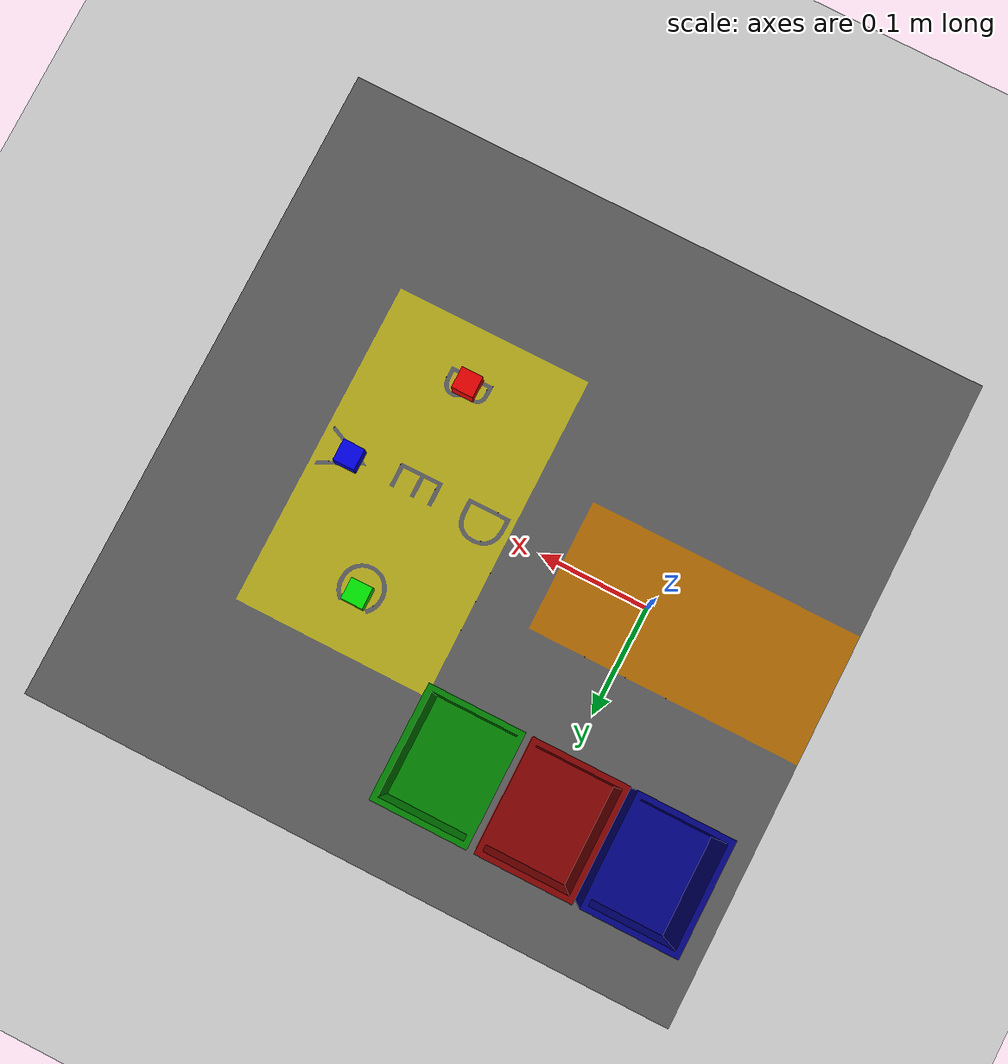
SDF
<?xml version="1.0" ?>
<sdf version="1.5">
    <world name="default">
    <gravity>0 0 -9.8</gravity>
    <!-- A global light source -->
    <include>
      <uri>model://sun</uri>
    </include>
    <!-- A ground plane -->
    <include>
      <uri>model://ground_plane</uri>
      <pose>0 0 -0.03 0 0 0</pose>
    </include>
    <include>
      <uri>model://sorting_table</uri>
      <pose>0.03 0 0 0 0 1.5707963267948966</pose>
    </include>
    <include>
      <uri>model://red_trash_can</uri>
      <pose>-0.005 0.19 0 0 0 1.5707963267948966</pose>
    </include>
    <include>
      <uri>model://green_trash_can</uri>
      <pose>0.085 0.19 0 0 0 1.5707963267948966</pose>
    </include>
    <include>
      <uri>model://blue_trash_can</uri>
      <pose>-0.095 0.19 0 0 0 1.5707963267948966</pose>
    </include>
    <include>
      <uri>model://red_cube</uri>
      <pose>0.22 -0.1 0.01 0 0 0</pose>
    </include>
    <include>
      <uri>model://green_cube</uri>
      <pose>0.22 0.1 0.01 0 0 0</pose>
    </include>
    <include>
      <uri>model://blue_cube</uri>
      <pose>0.28 0. 0.01 0 0 0</pose>
    </include>
  </world>
</sdf>

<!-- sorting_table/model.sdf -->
<sdf version='1.7'>
  <model name='sorting_table'>
    <pose>0 0 0 0 0 0</pose>
    <link name='table'>
      <collision name='table_collision'>
        <pose>0 -0.1 -0.015 0 0 0</pose>
        <geometry>
          <box>
            <size>0.6 0.6 0.03</size>
          </box>
        </geometry>
      </collision>
      <visual name='table_visual'>
        <pose>0 0 0 0 0 0</pose>
        <geometry>
          <mesh>
            <uri>model://sorting_table/meshes/table.dae</uri>
          </mesh>
        </geometry>
      </visual>
    </link>
    <static>1</static>
  </model>
</sdf>

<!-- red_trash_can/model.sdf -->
<sdf version='1.7'>
  <model name='red_trash_can'>
    <pose>0 0 0 0 0 0</pose>
    <link name='trash_can'>
      <collision name='trash_can_collision'>
        <pose>0 0 0 0 0 0</pose>
        <geometry>
          <mesh>
            <uri>model://red_trash_can/meshes/can.stl</uri>
          </mesh>
        </geometry>
      </collision>
      <visual name='trash_can_visual'>
        <pose>0 0 0 0 0 0</pose>
        <geometry>
          <mesh>
            <uri>model://red_trash_can/meshes/can.stl</uri>
          </mesh>
        </geometry>
        <material>
	  <ambient>0.5 0 0</ambient>
	  <diffuse>0.5 0 0</diffuse>
	  <specular>0.1 0.1 0.1 1 1</specular>
        </material>
      </visual>
    </link>
    <static>1</static>
  </model>
</sdf>

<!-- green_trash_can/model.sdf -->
<sdf version='1.7'>
  <model name='green_trash_can'>
    <pose>0 0 0 0 0 0</pose>
    <link name='trash_can'>
      <collision name='trash_can_collision'>
        <pose>0 0 0 0 0 0</pose>
        <geometry>
          <mesh>
            <uri>model://green_trash_can/meshes/can.stl</uri>
          </mesh>
        </geometry>
      </collision>
      <visual name='trash_can_visual'>
        <pose>0 0 0 0 0 0</pose>
        <geometry>
          <mesh>
            <uri>model://green_trash_can/meshes/can.stl</uri>
          </mesh>
        </geometry>
        <material>
	  <ambient>0 0.5 0</ambient>
	  <diffuse>0 0.5 0</diffuse>
	  <specular>0.1 0.1 0.1 1 1</specular>
        </material>
      </visual>
    </link>
    <static>1</static>
  </model>
</sdf>

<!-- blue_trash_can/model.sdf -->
<sdf version='1.7'>
  <model name='blue_trash_can'>
    <pose>0 0 0 0 0 0</pose>
    <link name='trash_can'>
      <collision name='trash_can_collision'>
        <pose>0 0 0 0 0 0</pose>
        <geometry>
          <mesh>
            <uri>model://blue_trash_can/meshes/can.stl</uri>
          </mesh>
        </geometry>
      </collision>
      <visual name='trash_can_visual'>
        <pose>0 0 0 0 0 0</pose>
        <geometry>
          <mesh>
            <uri>model://blue_trash_can/meshes/can.stl</uri>
          </mesh>
        </geometry>
        <material>
	  <ambient>0 0 0.5</ambient>
	  <diffuse>0 0 0.5</diffuse>
	  <specular>0.1 0.1 0.1 1 1</specular>
        </material>
      </visual>
    </link>
    <static>1</static>
  </model>
</sdf>

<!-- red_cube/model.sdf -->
<sdf version='1.7'>
  <model name='red_cube'>
    <pose>0 0 0 0 0 0</pose>
    <link name='cube'>
      <inertial>
        <mass>1.5e-3</mass>
        <inertia> <!-- inertias are tricky to compute -->
          <ixx>1e-7</ixx>       <!-- for a box: ixx = 0.083 * mass * (y*y + z*z) -->
          <ixy>0.0</ixy>         <!-- for a box: ixy = 0 -->
          <ixz>0.0</ixz>         <!-- for a box: ixz = 0 -->
          <iyy>1e-7</iyy>       <!-- for a box: iyy = 0.083 * mass * (x*x + z*z) -->
          <iyz>0.0</iyz>         <!-- for a box: iyz = 0 -->
          <izz>1e-7</izz>       <!-- for a box: izz = 0.083 * mass * (x*x + y*y) -->
        </inertia>
      </inertial>
      <collision name='cube_collision'>
        <pose>0 0 0 0 0 0</pose>
        <geometry>
          <box>
            <size>0.02 0.02 0.02</size>
          </box>
        </geometry>
        <surface>
          <friction>
            <ode>
              <mu>0.8</mu>
              <mu2>0.8</mu2>
            </ode>
          </friction>
	  <contact>
            <ode>
              <kp>500</kp>
              <kd>1</kd>
            </ode>
          </contact>
        </surface>
      </collision>
      <visual name='cube_visual'>
        <pose>0 0 0 0 0 0</pose>
        <geometry>
          <box>
            <size>0.02 0.02 0.02</size>
          </box>
        </geometry>
	<material>
	  <ambient>0.9 0 0</ambient>
	  <diffuse>0.9 0 0</diffuse>
	  <specular>0.1 0.1 0.1 1 1</specular>
        </material>
      </visual>
    </link>
  </model>
</sdf>

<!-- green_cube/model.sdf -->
<sdf version='1.7'>
  <model name='green_cube'>
    <pose>0 0 0 0 0 0</pose>
    <link name='cube'>
      <inertial>
        <mass>1.5e-3</mass>
        <inertia> <!-- inertias are tricky to compute -->
          <ixx>1e-7</ixx>       <!-- for a box: ixx = 0.083 * mass * (y*y + z*z) -->
          <ixy>0.0</ixy>         <!-- for a box: ixy = 0 -->
          <ixz>0.0</ixz>         <!-- for a box: ixz = 0 -->
          <iyy>1e-7</iyy>       <!-- for a box: iyy = 0.083 * mass * (x*x + z*z) -->
          <iyz>0.0</iyz>         <!-- for a box: iyz = 0 -->
          <izz>1e-7</izz>       <!-- for a box: izz = 0.083 * mass * (x*x + y*y) -->
        </inertia>
      </inertial>
      <collision name='cube_collision'>
        <pose>0 0 0 0 0 0</pose>
        <geometry>
          <box>
            <size>0.02 0.02 0.02</size>
          </box>
        </geometry>
        <surface>
          <friction>
            <ode>
              <mu>0.8</mu>
              <mu2>0.8</mu2>
            </ode>
          </friction>
	  <contact>
            <ode>
              <kp>500</kp>
              <kd>1</kd>
            </ode>
          </contact>
        </surface>
      </collision>
      <visual name='cube_visual'>
        <pose>0 0 0 0 0 0</pose>
        <geometry>
          <box>
            <size>0.02 0.02 0.02</size>
          </box>
        </geometry>
	<material>
	  <ambient>0 0.9 0</ambient>
	  <diffuse>0 0.9 0</diffuse>
	  <specular>0.1 0.1 0.1 1 1</specular>
        </material>
      </visual>
    </link>
  </model>
</sdf>

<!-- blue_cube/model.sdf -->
<sdf version='1.7'>
  <model name='blue_cube'>
    <pose>0 0 0 0 0 0</pose>
    <link name='cube'>
      <inertial>
        <mass>1.5e-3</mass>
        <inertia> <!-- inertias are tricky to compute -->
          <ixx>1e-7</ixx>       <!-- for a box: ixx = 0.083 * mass * (y*y + z*z) -->
          <ixy>0.0</ixy>         <!-- for a box: ixy = 0 -->
          <ixz>0.0</ixz>         <!-- for a box: ixz = 0 -->
          <iyy>1e-7</iyy>       <!-- for a box: iyy = 0.083 * mass * (x*x + z*z) -->
          <iyz>0.0</iyz>         <!-- for a box: iyz = 0 -->
          <izz>1e-7</izz>       <!-- for a box: izz = 0.083 * mass * (x*x + y*y) -->
        </inertia>
      </inertial>
      <collision name='cube_collision'>
        <pose>0 0 0 0 0 0</pose>
        <geometry>
          <box>
            <size>0.02 0.02 0.02</size>
          </box>
        </geometry>
        <surface>
          <friction>
            <ode>
              <mu>0.8</mu>
              <mu2>0.8</mu2>
            </ode>
          </friction>
	  <contact>
            <ode>
              <kp>500</kp>
              <kd>1</kd>
            </ode>
          </contact>
        </surface>
      </collision>
      <visual name='cube_visual'>
        <pose>0 0 0 0 0 0</pose>
        <geometry>
          <box>
            <size>0.02 0.02 0.02</size>
          </box>
        </geometry>
	<material>
	  <ambient>0 0 0.9</ambient>
	  <diffuse>0 0 0.9</diffuse>
	  <specular>0.1 0.1 0.1 1 1</specular>
        </material>
      </visual>
    </link>
  </model>
</sdf>
